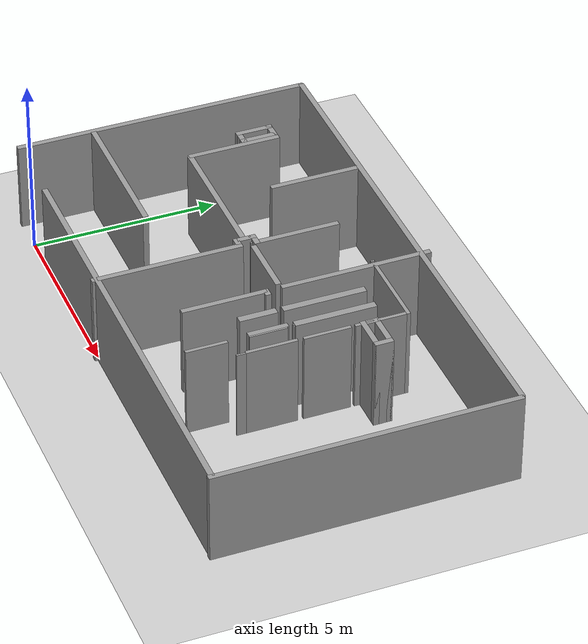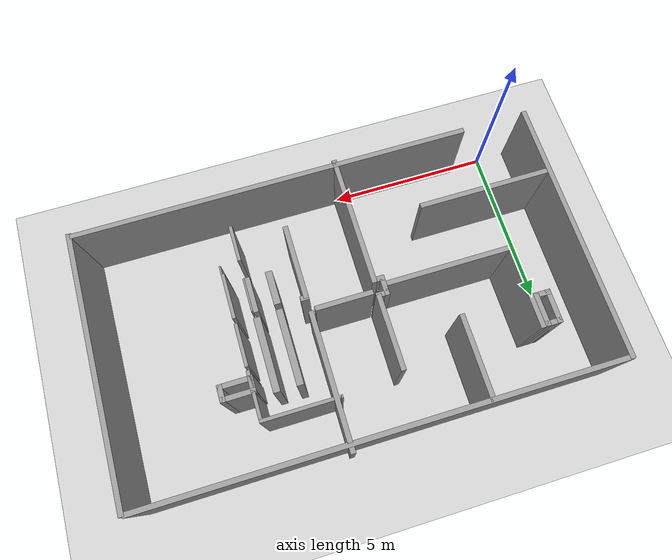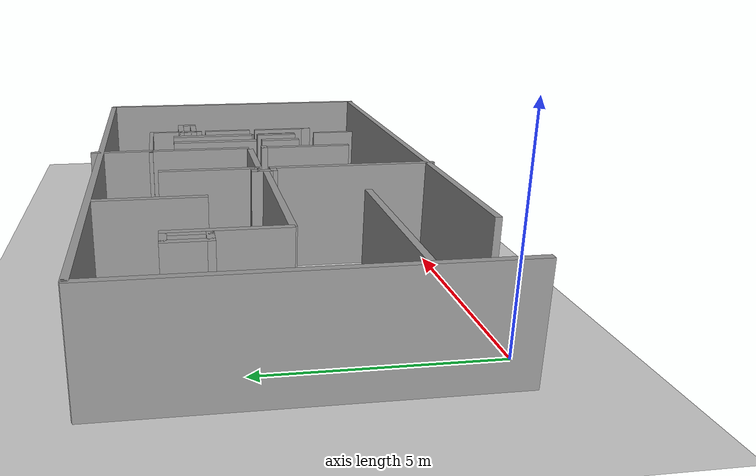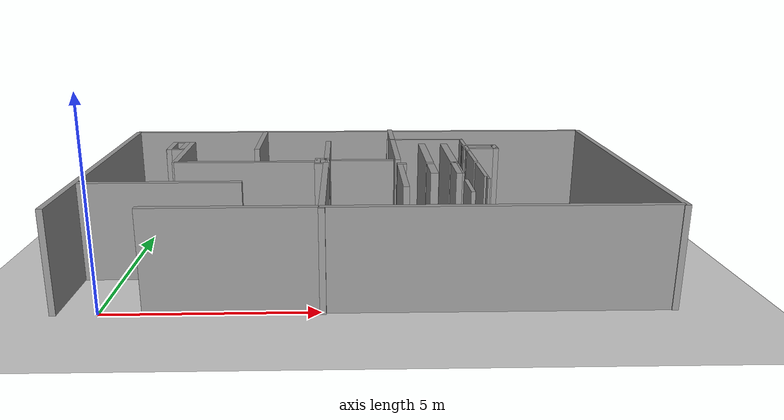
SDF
<sdf version="1.7">
 <world name="default">
  <light name="sun" type="directional">
   <pose>0 0 10 0 -0 0</pose>
   <diffuse>0.8 0.8 0.8 1</diffuse>
   <specular>0.2 0.2 0.2 1</specular>
   <attenuation>
    <range>1000</range>
    <constant>0.9</constant>
    <linear>0.01</linear>
    <quadratic>0.001</quadratic>
   </attenuation>
   <direction>-0.5 0.1 -0.9</direction>
   <spot><inner_angle>0</inner_angle><outer_angle>0</outer_angle><falloff>0</falloff></spot>
  </light>
  <model name="ground_plane">
   <static>1</static>
   <link name="link">
    <collision name="collision">
     <geometry><plane><normal>0 0 1</normal><size>100 100</size></plane></geometry>
     <surface>
      <contact><collide_bitmask>65535</collide_bitmask></contact>
      <friction><ode><mu>100</mu><mu2>50</mu2></ode></friction>
     </surface>
    </collision>
    <visual name="visual">
     <cast_shadows>0</cast_shadows>
     <geometry><plane><normal>0 0 1</normal><size>100 100</size></plane></geometry>
     <material>
      <script><uri>file://media/materials/scripts/gazebo.material</uri><name>Gazebo/Grey</name></script>
     </material>
    </visual>
   </link>
  </model>
  <gravity>0 0 -9.8</gravity>
  <magnetic_field>6e-06 2.3e-05 -4.2e-05</magnetic_field>
  <atmosphere type="adiabatic"/>
  <physics type="ode">
   <max_step_size>0.001</max_step_size>
   <real_time_factor>1</real_time_factor>
   <real_time_update_rate>1000</real_time_update_rate>
  </physics>
  <scene><ambient>0.4 0.4 0.4 1</ambient><background>0.7 0.7 0.7 1</background><shadows>1</shadows></scene>
  <spherical_coordinates>
   <surface_model>EARTH_WGS84</surface_model>
   <latitude_deg>0</latitude_deg>
   <longitude_deg>0</longitude_deg>
   <elevation>0</elevation>
   <heading_deg>0</heading_deg>
  </spherical_coordinates>
  <model name="myroom_long_start">
   <pose>6.00346 4.01651 0 0 -0 0</pose>
   <link name="Wall_0">
    <collision name="Wall_0_Collision">
     <geometry><box><size>12 0.15 2.5</size></box></geometry>
     <pose>0 0 1.25 0 -0 0</pose>
    </collision>
    <visual name="Wall_0_Visual">
     <pose>0 0 1.25 0 -0 0</pose>
     <geometry><box><size>12 0.15 2.5</size></box></geometry>
     <material>
      <script><uri>file://media/materials/scripts/gazebo.material</uri><name>Gazebo/Grey</name></script>
      <ambient>1 1 1 1</ambient>
     </material>
     <meta><layer>0</layer></meta>
    </visual>
    <pose>0.977061 -3.98139 0 0 -0 0</pose>
   </link>
   <link name="Wall_10">
    <collision name="Wall_10_Collision">
     <geometry><box><size>4 0.15 2.5</size></box></geometry>
     <pose>0 0 1.25 0 -0 0</pose>
    </collision>
    <visual name="Wall_10_Visual">
     <pose>0 0 1.25 0 -0 0</pose>
     <geometry><box><size>4 0.15 2.5</size></box></geometry>
     <material>
      <script><uri>file://media/materials/scripts/gazebo.material</uri><name>Gazebo/Grey</name></script>
      <ambient>1 1 1 1</ambient>
     </material>
     <meta><layer>0</layer></meta>
    </visual>
    <pose>-4.95933 -1.98457 0 0 -0 0</pose>
   </link>
   <link name="Wall_12">
    <collision name="Wall_12_Collision">
     <geometry><box><size>4 0.15 2.5</size></box></geometry>
     <pose>0 0 1.25 0 -0 0</pose>
    </collision>
    <visual name="Wall_12_Visual">
     <pose>0 0 1.25 0 -0 0</pose>
     <geometry><box><size>4 0.15 2.5</size></box></geometry>
     <material>
      <script><uri>file://media/materials/scripts/gazebo.material</uri><name>Gazebo/Grey</name></script>
      <ambient>1 1 1 1</ambient>
     </material>
     <meta><layer>0</layer></meta>
    </visual>
    <pose>-0.973865 -2.13486 0 0 -0 -1.5708</pose>
   </link>
   <link name="Wall_14">
    <collision name="Wall_14_Collision">
     <geometry><box><size>4 0.15 2.5</size></box></geometry>
     <pose>0 0 1.25 0 -0 0</pose>
    </collision>
    <visual name="Wall_14_Visual">
     <pose>0 0 1.25 0 -0 0</pose>
     <geometry><box><size>4 0.15 2.5</size></box></geometry>
     <material>
      <script><uri>file://media/materials/scripts/gazebo.material</uri><name>Gazebo/Grey</name></script>
      <ambient>1 1 1 1</ambient>
     </material>
     <meta><layer>0</layer></meta>
    </visual>
    <pose>0.96916 2.13485 0 0 -0 -1.5708</pose>
   </link>
   <link name="Wall_16">
    <collision name="Wall_16_Collision">
     <geometry><box><size>2.5 0.15 2.5</size></box></geometry>
     <pose>0 0 1.25 0 -0 0</pose>
    </collision>
    <visual name="Wall_16_Visual">
     <pose>0 0 1.25 0 -0 0</pose>
     <geometry><box><size>2.5 0.15 2.5</size></box></geometry>
     <material>
      <script><uri>file://media/materials/scripts/gazebo.material</uri><name>Gazebo/Grey</name></script>
      <ambient>1 1 1 1</ambient>
     </material>
     <meta><layer>0</layer></meta>
    </visual>
    <pose>-5.00955 1.19594 0 0 -0 -1.5708</pose>
   </link>
   <link name="Wall_2">
    <collision name="Wall_2_Collision">
     <geometry><box><size>8 0.15 2.5</size></box></geometry>
     <pose>0 0 1.25 0 -0 0</pose>
    </collision>
    <visual name="Wall_2_Visual">
     <pose>0 0 1.25 0 -0 0</pose>
     <geometry><box><size>8 0.15 2.5</size></box></geometry>
     <material>
      <script><uri>file://media/materials/scripts/gazebo.material</uri><name>Gazebo/Grey</name></script>
      <ambient>1 1 1 1</ambient>
     </material>
     <meta><layer>0</layer></meta>
    </visual>
    <pose>-6.99952 -0.062096 0 0 -0 -1.5708</pose>
   </link>
   <link name="Wall_20">
    <collision name="Wall_20_Collision">
     <geometry><box><size>2.5 0.15 2.5</size></box></geometry>
     <pose>0 0 1.25 0 -0 0</pose>
    </collision>
    <visual name="Wall_20_Visual">
     <pose>0 0 1.25 0 -0 0</pose>
     <geometry><box><size>2.5 0.15 2.5</size></box></geometry>
     <material>
      <script><uri>file://media/materials/scripts/gazebo.material</uri><name>Gazebo/Grey</name></script>
      <ambient>1 1 1 1</ambient>
     </material>
     <meta><layer>0</layer></meta>
    </visual>
    <pose>-2.98955 2.67594 0 0 -0 -1.5708</pose>
   </link>
   <link name="Wall_24">
    <collision name="Wall_24_Collision">
     <geometry><box><size>3.75 0.15 2.5</size></box></geometry>
     <pose>0 0 1.25 0 -0 0</pose>
    </collision>
    <visual name="Wall_24_Visual">
     <pose>0 0 1.25 0 -0 0</pose>
     <geometry><box><size>3.75 0.15 2.5</size></box></geometry>
     <material>
      <script><uri>file://media/materials/scripts/gazebo.material</uri><name>Gazebo/Grey</name></script>
      <ambient>1 1 1 1</ambient>
     </material>
     <meta><layer>0</layer></meta>
    </visual>
    <pose>-3.15343 -0.018496 0 0 -0 0</pose>
   </link>
   <link name="Wall_28">
    <collision name="Wall_28_Collision">
     <geometry><box><size>2.25 0.15 2.5</size></box></geometry>
     <pose>0 0 1.25 0 -0 0</pose>
    </collision>
    <visual name="Wall_28_Visual">
     <pose>0 0 1.25 0 -0 0</pose>
     <geometry><box><size>2.25 0.15 2.5</size></box></geometry>
     <material>
      <script><uri>file://media/materials/scripts/gazebo.material</uri><name>Gazebo/Grey</name></script>
      <ambient>1 1 1 1</ambient>
     </material>
     <meta><layer>0</layer></meta>
    </visual>
    <pose>-0.964656 1.33168 0 0 -0 -1.5708</pose>
   </link>
   <link name="Wall_30">
    <collision name="Wall_30_Collision">
     <geometry><box><size>2.25 0.15 2.5</size></box></geometry>
     <pose>0 0 1.25 0 -0 0</pose>
    </collision>
    <visual name="Wall_30_Visual">
     <pose>0 0 1.25 0 -0 0</pose>
     <geometry><box><size>2.25 0.15 2.5</size></box></geometry>
     <material>
      <script><uri>file://media/materials/scripts/gazebo.material</uri><name>Gazebo/Grey</name></script>
      <ambient>1 1 1 1</ambient>
     </material>
     <meta><layer>0</layer></meta>
    </visual>
    <pose>0.986145 -1.37675 0 0 -0 -1.5708</pose>
   </link>
   <link name="Wall_32">
    <collision name="Wall_32_Collision">
     <geometry><box><size>0.25 0.15 2.5</size></box></geometry>
     <pose>0 0 1.25 0 -0 0</pose>
    </collision>
    <visual name="Wall_32_Visual">
     <pose>0 0 1.25 0 -0 0</pose>
     <geometry><box><size>0.25 0.15 2.5</size></box></geometry>
     <material>
      <script><uri>file://media/materials/scripts/gazebo.material</uri><name>Gazebo/Grey</name></script>
      <ambient>1 1 1 1</ambient>
     </material>
     <meta><layer>0</layer></meta>
    </visual>
    <pose>-1.15449 -0.210647 0 0 -0 0</pose>
   </link>
   <link name="Wall_34">
    <collision name="Wall_34_Collision">
     <geometry><box><size>0.5 0.15 2.5</size></box></geometry>
     <pose>0 0 1.25 0 -0 0</pose>
    </collision>
    <visual name="Wall_34_Visual">
     <pose>0 0 1.25 0 -0 0</pose>
     <geometry><box><size>0.5 0.15 2.5</size></box></geometry>
     <material>
      <script><uri>file://media/materials/scripts/gazebo.material</uri><name>Gazebo/Grey</name></script>
      <ambient>1 1 1 1</ambient>
     </material>
     <meta><layer>0</layer></meta>
    </visual>
    <pose>-1.20471 0.066247 0 0 -0 -1.5708</pose>
   </link>
   <link name="Wall_36">
    <collision name="Wall_36_Collision">
     <geometry><box><size>0.25 0.15 2.5</size></box></geometry>
     <pose>0 0 1.25 0 -0 0</pose>
    </collision>
    <visual name="Wall_36_Visual">
     <pose>0 0 1.25 0 -0 0</pose>
     <geometry><box><size>0.25 0.15 2.5</size></box></geometry>
     <material>
      <script><uri>file://media/materials/scripts/gazebo.material</uri><name>Gazebo/Grey</name></script>
      <ambient>1 1 1 1</ambient>
     </material>
     <meta><layer>0</layer></meta>
    </visual>
    <pose>-1.01476 0.240944 0 0 -0 0</pose>
   </link>
   <link name="Wall_38">
    <collision name="Wall_38_Collision">
     <geometry><box><size>0.25 0.15 2.5</size></box></geometry>
     <pose>0 0 1.25 0 -0 0</pose>
    </collision>
    <visual name="Wall_38_Visual">
     <pose>0 0 1.25 0 -0 0</pose>
     <geometry><box><size>0.25 0.15 2.5</size></box></geometry>
     <material>
      <script><uri>file://media/materials/scripts/gazebo.material</uri><name>Gazebo/Grey</name></script>
      <ambient>1 1 1 1</ambient>
     </material>
     <meta><layer>0</layer></meta>
    </visual>
    <pose>1.03485 -0.273698 0 0 -0 3.14159</pose>
   </link>
   <link name="Wall_4">
    <collision name="Wall_4_Collision">
     <geometry><box><size>14 0.15 2.5</size></box></geometry>
     <pose>0 0 1.25 0 -0 0</pose>
    </collision>
    <visual name="Wall_4_Visual">
     <pose>0 0 1.25 0 -0 0</pose>
     <geometry><box><size>14 0.15 2.5</size></box></geometry>
     <material>
      <script><uri>file://media/materials/scripts/gazebo.material</uri><name>Gazebo/Grey</name></script>
      <ambient>1 1 1 1</ambient>
     </material>
     <meta><layer>0</layer></meta>
    </visual>
    <pose>-0.026045 3.88302 0 0 -0 3.14159</pose>
   </link>
   <link name="Wall_6">
    <collision name="Wall_6_Collision">
     <geometry><box><size>8 0.15 2.5</size></box></geometry>
     <pose>0 0 1.25 0 -0 0</pose>
    </collision>
    <visual name="Wall_6_Visual">
     <pose>0 0 1.25 0 -0 0</pose>
     <geometry><box><size>8 0.15 2.5</size></box></geometry>
     <material>
      <script><uri>file://media/materials/scripts/gazebo.material</uri><name>Gazebo/Grey</name></script>
      <ambient>1 1 1 1</ambient>
     </material>
     <meta><layer>0</layer></meta>
    </visual>
    <pose>6.99952 -0.08221 0 0 -0 -1.5708</pose>
   </link>
   <static>1</static>
  </model>
  <model name="half_wall">
   <pose>0.67196 6.91648 0 0 -0 0</pose>
   <link name="Wall_0">
    <collision name="Wall_0_Collision">
     <geometry><box><size>1 0.15 2.5</size></box></geometry>
     <pose>0 0 1.25 0 -0 0</pose>
    </collision>
    <visual name="Wall_0_Visual">
     <pose>0 0 1.25 0 -0 0</pose>
     <geometry><box><size>1 0.15 2.5</size></box></geometry>
     <material>
      <script><uri>file://media/materials/scripts/gazebo.material</uri><name>Gazebo/Grey</name></script>
      <ambient>1 1 1 1</ambient>
     </material>
     <meta><layer>0</layer></meta>
    </visual>
    <pose>-0.175 -0.9541 0 0 -0 1.5708</pose>
   </link>
   <link name="Wall_1">
    <collision name="Wall_1_Collision">
     <geometry><box><size>0.5 0.15 2.5</size></box></geometry>
     <pose>0 0 1.25 0 -0 0</pose>
    </collision>
    <visual name="Wall_1_Visual">
     <pose>0 0 1.25 0 -0 0</pose>
     <geometry><box><size>0.5 0.15 2.5</size></box></geometry>
     <material>
      <script><uri>file://media/materials/scripts/gazebo.material</uri><name>Gazebo/Grey</name></script>
      <ambient>1 1 1 1</ambient>
     </material>
     <meta><layer>0</layer></meta>
    </visual>
    <pose>0 -0.5291 0 0 -0 0</pose>
   </link>
   <link name="Wall_2">
    <collision name="Wall_2_Collision">
     <geometry><box><size>1 0.15 2.5</size></box></geometry>
     <pose>0 0 1.25 0 -0 0</pose>
    </collision>
    <visual name="Wall_2_Visual">
     <pose>0 0 1.25 0 -0 0</pose>
     <geometry><box><size>1 0.15 2.5</size></box></geometry>
     <material>
      <script><uri>file://media/materials/scripts/gazebo.material</uri><name>Gazebo/Grey</name></script>
      <ambient>1 1 1 1</ambient>
     </material>
     <meta><layer>0</layer></meta>
    </visual>
    <pose>0.175 -0.9541 0 0 -0 -1.5708</pose>
   </link>
   <link name="Wall_3">
    <collision name="Wall_3_Collision">
     <geometry><box><size>0.5 0.15 2.5</size></box></geometry>
     <pose>0 0 1.25 0 -0 0</pose>
    </collision>
    <visual name="Wall_3_Visual">
     <pose>0 0 1.25 0 -0 0</pose>
     <geometry><box><size>0.5 0.15 2.5</size></box></geometry>
     <material>
      <script><uri>file://media/materials/scripts/gazebo.material</uri><name>Gazebo/Grey</name></script>
      <ambient>1 1 1 1</ambient>
     </material>
     <meta><layer>0</layer></meta>
    </visual>
    <pose>0 -1.3791 0 0 -0 3.14159</pose>
   </link>
   <static>1</static>
  </model>
  <model name="half_wall_0">
   <pose>8.50621 5.64751 0 0 -0 1.57113</pose>
   <link name="Wall_0">
    <collision name="Wall_0_Collision">
     <geometry><box><size>1 0.15 2.5</size></box></geometry>
     <pose>0 0 1.25 0 -0 0</pose>
    </collision>
    <visual name="Wall_0_Visual">
     <pose>0 0 1.25 0 -0 0</pose>
     <geometry><box><size>1 0.15 2.5</size></box></geometry>
     <material>
      <script><uri>file://media/materials/scripts/gazebo.material</uri><name>Gazebo/Grey</name></script>
      <ambient>1 1 1 1</ambient>
     </material>
     <meta><layer>0</layer></meta>
    </visual>
    <pose>-0.175 -0.9541 0 0 -0 1.5708</pose>
   </link>
   <link name="Wall_1">
    <collision name="Wall_1_Collision">
     <geometry><box><size>0.5 0.15 2.5</size></box></geometry>
     <pose>0 0 1.25 0 -0 0</pose>
    </collision>
    <visual name="Wall_1_Visual">
     <pose>0 0 1.25 0 -0 0</pose>
     <geometry><box><size>0.5 0.15 2.5</size></box></geometry>
     <material>
      <script><uri>file://media/materials/scripts/gazebo.material</uri><name>Gazebo/Grey</name></script>
      <ambient>1 1 1 1</ambient>
     </material>
     <meta><layer>0</layer></meta>
    </visual>
    <pose>0 -0.5291 0 0 -0 0</pose>
   </link>
   <link name="Wall_2">
    <collision name="Wall_2_Collision">
     <geometry><box><size>1 0.15 2.5</size></box></geometry>
     <pose>0 0 1.25 0 -0 0</pose>
    </collision>
    <visual name="Wall_2_Visual">
     <pose>0 0 1.25 0 -0 0</pose>
     <geometry><box><size>1 0.15 2.5</size></box></geometry>
     <material>
      <script><uri>file://media/materials/scripts/gazebo.material</uri><name>Gazebo/Grey</name></script>
      <ambient>1 1 1 1</ambient>
     </material>
     <meta><layer>0</layer></meta>
    </visual>
    <pose>0.175 -0.9541 0 0 -0 -1.5708</pose>
   </link>
   <link name="Wall_3">
    <collision name="Wall_3_Collision">
     <geometry><box><size>0.5 0.15 2.5</size></box></geometry>
     <pose>0 0 1.25 0 -0 0</pose>
    </collision>
    <visual name="Wall_3_Visual">
     <pose>0 0 1.25 0 -0 0</pose>
     <geometry><box><size>0.5 0.15 2.5</size></box></geometry>
     <material>
      <script><uri>file://media/materials/scripts/gazebo.material</uri><name>Gazebo/Grey</name></script>
      <ambient>1 1 1 1</ambient>
     </material>
     <meta><layer>0</layer></meta>
    </visual>
    <pose>0 -1.3791 0 0 -0 3.14159</pose>
   </link>
   <static>1</static>
  </model>
  <model name="inroom_branch2_wall_0">
   <static>1</static>
   <pose>6.825 6.650 1.250 0 0 0</pose>
   <link name="link">
    <collision name="collision"><geometry><box><size>0.050 0.100 2.50</size></box></geometry></collision>
    <visual name="visual">
     <geometry><box><size>0.050 0.100 2.50</size></box></geometry>
     <material>
      <script><uri>file://media/materials/scripts/gazebo.material</uri><name>Gazebo/Grey</name></script>
     </material>
    </visual>
   </link>
  </model>
  <model name="inroom_branch2_wall_1">
   <static>1</static>
   <pose>8.000 6.650 1.250 0 0 0</pose>
   <link name="link">
    <collision name="collision"><geometry><box><size>2.200 0.100 2.50</size></box></geometry></collision>
    <visual name="visual">
     <geometry><box><size>2.200 0.100 2.50</size></box></geometry>
     <material>
      <script><uri>file://media/materials/scripts/gazebo.material</uri><name>Gazebo/Grey</name></script>
     </material>
    </visual>
   </link>
  </model>
  <model name="inroom_branch2_wall_2">
   <static>1</static>
   <pose>9.050 6.225 1.250 0 0 0</pose>
   <link name="link">
    <collision name="collision"><geometry><box><size>0.100 0.750 2.50</size></box></geometry></collision>
    <visual name="visual">
     <geometry><box><size>0.100 0.750 2.50</size></box></geometry>
     <material>
      <script><uri>file://media/materials/scripts/gazebo.material</uri><name>Gazebo/Grey</name></script>
     </material>
    </visual>
   </link>
  </model>
  <model name="inroom_branch2_wall_3">
   <static>1</static>
   <pose>7.800 4.950 1.250 0 0 0</pose>
   <link name="link">
    <collision name="collision"><geometry><box><size>0.200 2.200 2.50</size></box></geometry></collision>
    <visual name="visual">
     <geometry><box><size>0.200 2.200 2.50</size></box></geometry>
     <material>
      <script><uri>file://media/materials/scripts/gazebo.material</uri><name>Gazebo/Grey</name></script>
     </material>
    </visual>
   </link>
  </model>
  <model name="inroom_branch2_wall_4">
   <static>1</static>
   <pose>8.450 4.975 1.250 0 0 0</pose>
   <link name="link">
    <collision name="collision"><geometry><box><size>0.200 2.150 2.50</size></box></geometry></collision>
    <visual name="visual">
     <geometry><box><size>0.200 2.150 2.50</size></box></geometry>
     <material>
      <script><uri>file://media/materials/scripts/gazebo.material</uri><name>Gazebo/Grey</name></script>
     </material>
    </visual>
   </link>
  </model>
  <model name="inroom_branch2_wall_5">
   <static>1</static>
   <pose>9.050 5.500 1.250 0 0 0</pose>
   <link name="link">
    <collision name="collision"><geometry><box><size>0.100 0.500 2.50</size></box></geometry></collision>
    <visual name="visual">
     <geometry><box><size>0.100 0.500 2.50</size></box></geometry>
     <material>
      <script><uri>file://media/materials/scripts/gazebo.material</uri><name>Gazebo/Grey</name></script>
     </material>
    </visual>
   </link>
  </model>
  <model name="inroom_branch2_wall_6">
   <static>1</static>
   <pose>9.050 4.525 1.250 0 0 0</pose>
   <link name="link">
    <collision name="collision"><geometry><box><size>0.100 1.250 2.50</size></box></geometry></collision>
    <visual name="visual">
     <geometry><box><size>0.100 1.250 2.50</size></box></geometry>
     <material>
      <script><uri>file://media/materials/scripts/gazebo.material</uri><name>Gazebo/Grey</name></script>
     </material>
    </visual>
   </link>
  </model>
  <model name="inroom_branch2_wall_7">
   <static>1</static>
   <pose>4.775 4.175 1.250 0 0 0</pose>
   <link name="link">
    <collision name="collision"><geometry><box><size>0.050 0.050 2.50</size></box></geometry></collision>
    <visual name="visual">
     <geometry><box><size>0.050 0.050 2.50</size></box></geometry>
     <material>
      <script><uri>file://media/materials/scripts/gazebo.material</uri><name>Gazebo/Grey</name></script>
     </material>
    </visual>
   </link>
  </model>
  <model name="inroom_branch2_wall_8">
   <static>1</static>
   <pose>6.000 4.125 1.250 0 0 0</pose>
   <link name="link">
    <collision name="collision"><geometry><box><size>1.700 0.150 2.50</size></box></geometry></collision>
    <visual name="visual">
     <geometry><box><size>1.700 0.150 2.50</size></box></geometry>
     <material>
      <script><uri>file://media/materials/scripts/gazebo.material</uri><name>Gazebo/Grey</name></script>
     </material>
    </visual>
   </link>
  </model>
  <model name="inroom_branch2_wall_9">
   <static>1</static>
   <pose>5.025 4.125 1.250 0 0 0</pose>
   <link name="link">
    <collision name="collision"><geometry><box><size>0.050 0.050 2.50</size></box></geometry></collision>
    <visual name="visual">
     <geometry><box><size>0.050 0.050 2.50</size></box></geometry>
     <material>
      <script><uri>file://media/materials/scripts/gazebo.material</uri><name>Gazebo/Grey</name></script>
     </material>
    </visual>
   </link>
  </model>
  <model name="inroom_branch2_wall_10">
   <static>1</static>
   <pose>8.475 3.875 1.250 0 0 0</pose>
   <link name="link">
    <collision name="collision"><geometry><box><size>0.050 0.050 2.50</size></box></geometry></collision>
    <visual name="visual">
     <geometry><box><size>0.050 0.050 2.50</size></box></geometry>
     <material>
      <script><uri>file://media/materials/scripts/gazebo.material</uri><name>Gazebo/Grey</name></script>
     </material>
    </visual>
   </link>
  </model>
  <model name="inroom_branch2_wall_11">
   <static>1</static>
   <pose>8.425 3.225 1.250 0 0 0</pose>
   <link name="link">
    <collision name="collision"><geometry><box><size>0.150 1.050 2.50</size></box></geometry></collision>
    <visual name="visual">
     <geometry><box><size>0.150 1.050 2.50</size></box></geometry>
     <material>
      <script><uri>file://media/materials/scripts/gazebo.material</uri><name>Gazebo/Grey</name></script>
     </material>
    </visual>
   </link>
  </model>
  <model name="inroom_branch2_wall_12">
   <static>1</static>
   <pose>9.050 3.075 1.250 0 0 0</pose>
   <link name="link">
    <collision name="collision"><geometry><box><size>0.100 1.350 2.50</size></box></geometry></collision>
    <visual name="visual">
     <geometry><box><size>0.100 1.350 2.50</size></box></geometry>
     <material>
      <script><uri>file://media/materials/scripts/gazebo.material</uri><name>Gazebo/Grey</name></script>
     </material>
    </visual>
   </link>
  </model>
  <model name="inroom_branch2_wall_13">
   <static>1</static>
   <pose>7.800 3.200 1.250 0 0 0</pose>
   <link name="link">
    <collision name="collision"><geometry><box><size>0.200 1.000 2.50</size></box></geometry></collision>
    <visual name="visual">
     <geometry><box><size>0.200 1.000 2.50</size></box></geometry>
     <material>
      <script><uri>file://media/materials/scripts/gazebo.material</uri><name>Gazebo/Grey</name></script>
     </material>
    </visual>
   </link>
  </model>
  <model name="inroom_branch2_wall_14">
   <static>1</static>
   <pose>8.525 3.200 1.250 0 0 0</pose>
   <link name="link">
    <collision name="collision"><geometry><box><size>0.050 1.000 2.50</size></box></geometry></collision>
    <visual name="visual">
     <geometry><box><size>0.050 1.000 2.50</size></box></geometry>
     <material>
      <script><uri>file://media/materials/scripts/gazebo.material</uri><name>Gazebo/Grey</name></script>
     </material>
    </visual>
   </link>
  </model>
  <model name="inroom_branch2_wall_15">
   <static>1</static>
   <pose>9.075 2.275 1.250 0 0 0</pose>
   <link name="link">
    <collision name="collision"><geometry><box><size>0.050 0.250 2.50</size></box></geometry></collision>
    <visual name="visual">
     <geometry><box><size>0.050 0.250 2.50</size></box></geometry>
     <material>
      <script><uri>file://media/materials/scripts/gazebo.material</uri><name>Gazebo/Grey</name></script>
     </material>
    </visual>
   </link>
  </model>
  <model name="inroom_branch2_wall_16">
   <static>1</static>
   <pose>8.500 1.600 1.250 0 0 0</pose>
   <link name="link">
    <collision name="collision"><geometry><box><size>0.100 1.100 2.50</size></box></geometry></collision>
    <visual name="visual">
     <geometry><box><size>0.100 1.100 2.50</size></box></geometry>
     <material>
      <script><uri>file://media/materials/scripts/gazebo.material</uri><name>Gazebo/Grey</name></script>
     </material>
    </visual>
   </link>
  </model>
 </world>
</sdf>
